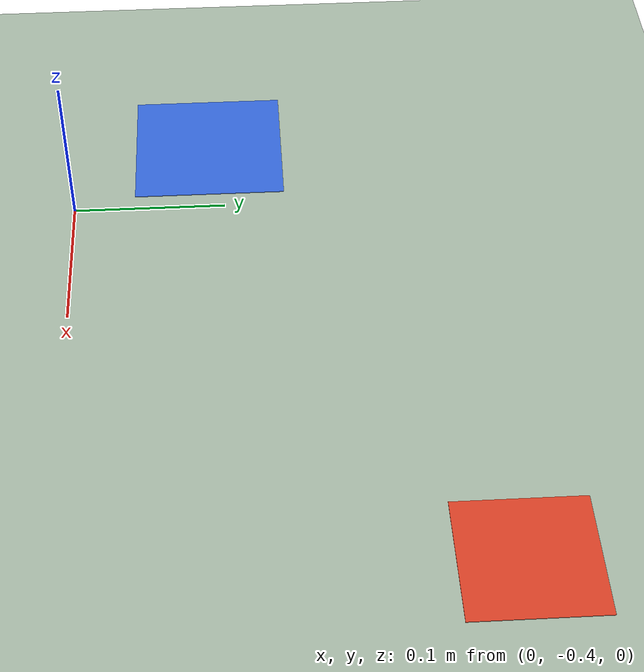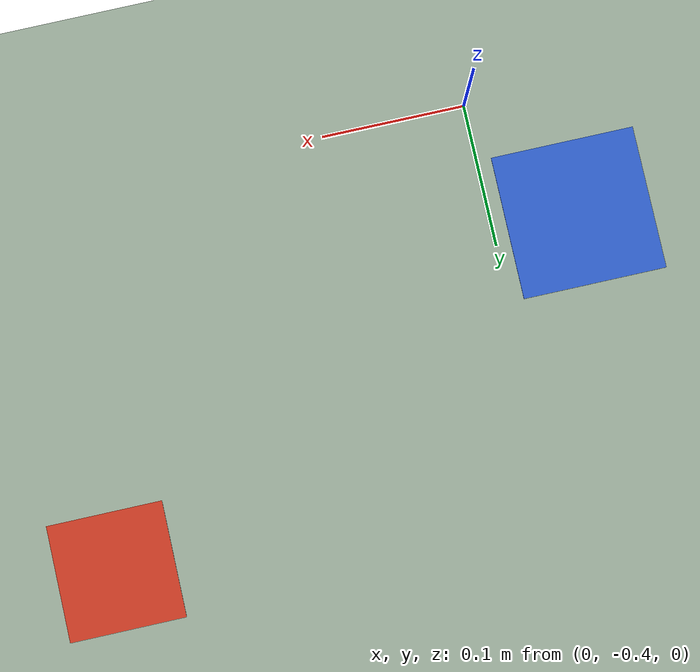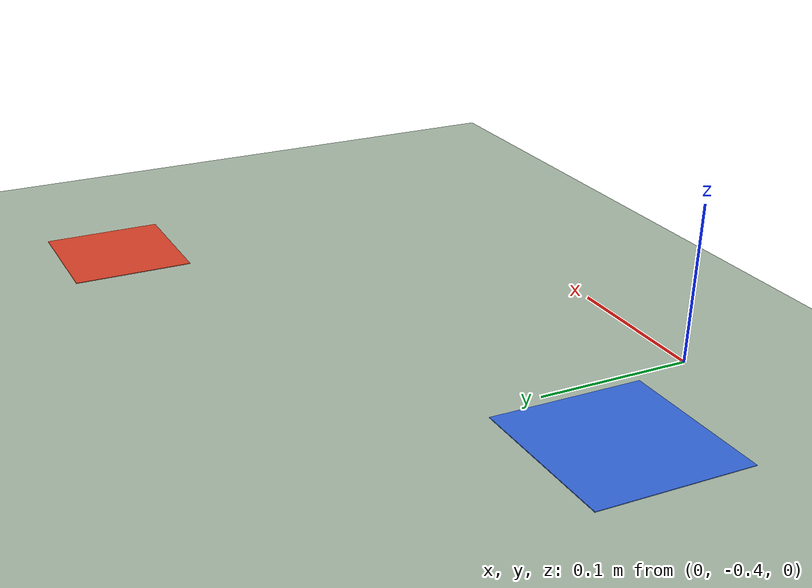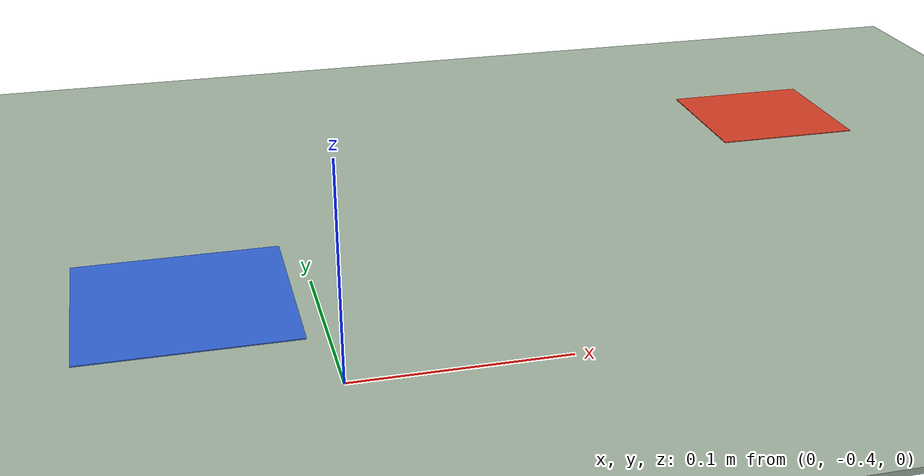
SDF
<?xml version="1.0"?>
<sdf version="1.9">
  <world name="davinci_lab">
    <physics name="physics" type="ignored">
      <max_step_size>0.001</max_step_size><real_time_factor>1</real_time_factor>
    </physics>
    <plugin filename="gz-sim-physics-system" name="gz::sim::systems::Physics"/>
    <plugin filename="gz-sim-user-commands-system" name="gz::sim::systems::UserCommands"/>
    <plugin filename="gz-sim-scene-broadcaster-system" name="gz::sim::systems::SceneBroadcaster"/>
    <gravity>0 0 -9.81</gravity>
    <scene><ambient>0.5 0.5 0.5 1</ambient><background>0.88 0.91 0.90 1</background></scene>
    <light type="directional" name="sun">
      <pose>0 0 5 0 0 0</pose><diffuse>0.9 0.9 0.9 1</diffuse>
      <direction>-0.5 0.1 -0.9</direction><cast_shadows>true</cast_shadows>
    </light>
    <model name="floor">
      <static>true</static>
      <link name="floor_link">
        <collision name="floor_collision">
          <geometry><plane><normal>0 0 1</normal><size>3 3</size></plane></geometry>
        </collision>
        <visual name="floor_visual">
          <geometry><plane><normal>0 0 1</normal><size>3 3</size></plane></geometry>
          <material><ambient>0.65 0.72 0.65 1</ambient><diffuse>0.65 0.72 0.65 1</diffuse></material>
        </visual>
      </link>
    </model>
    <!-- Flat visual markers only: no objects, conveyor dynamics, or physical grasp. -->
    <model name="pickup_marker">
      <static>true</static><pose>0.30 -0.14 0.001 0 0 0</pose>
      <link name="marker">
        <visual name="visual">
          <geometry><box><size>0.08 0.08 0.002</size></box></geometry>
          <material><ambient>0.85 0.25 0.15 1</ambient><diffuse>0.85 0.25 0.15 1</diffuse></material>
        </visual>
      </link>
    </model>
    <model name="placement_marker">
      <static>true</static><pose>-0.06 -0.31 0.001 0 0 0</pose>
      <link name="marker">
        <visual name="visual">
          <geometry><box><size>0.10 0.10 0.002</size></box></geometry>
          <material><ambient>0.2 0.4 0.85 1</ambient><diffuse>0.2 0.4 0.85 1</diffuse></material>
        </visual>
      </link>
    </model>
  </world>
</sdf>
